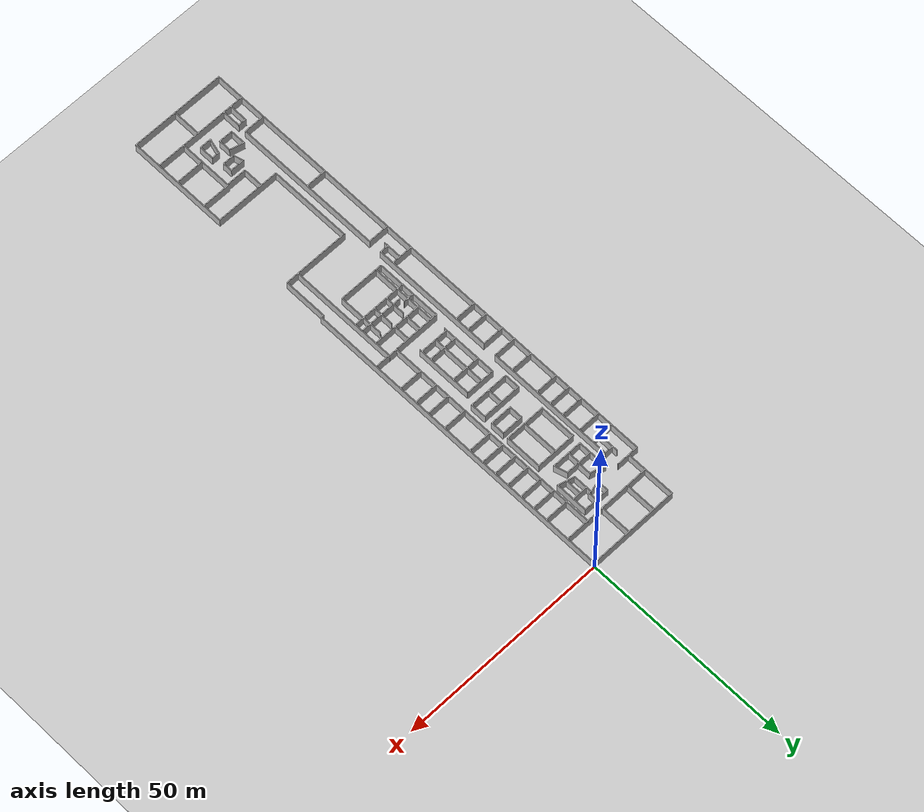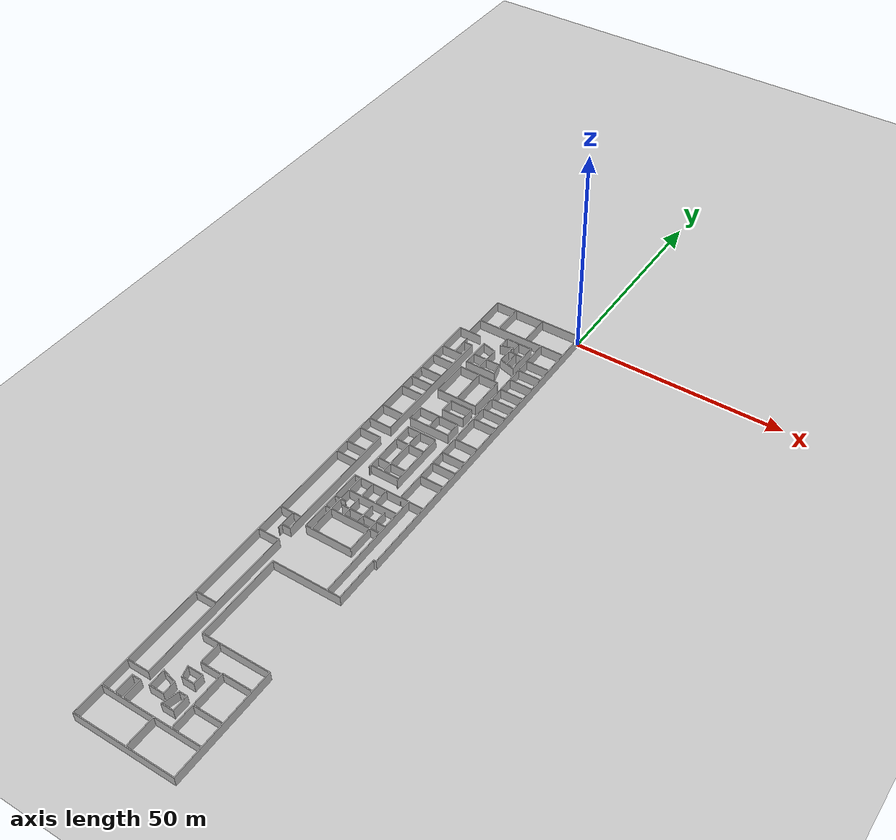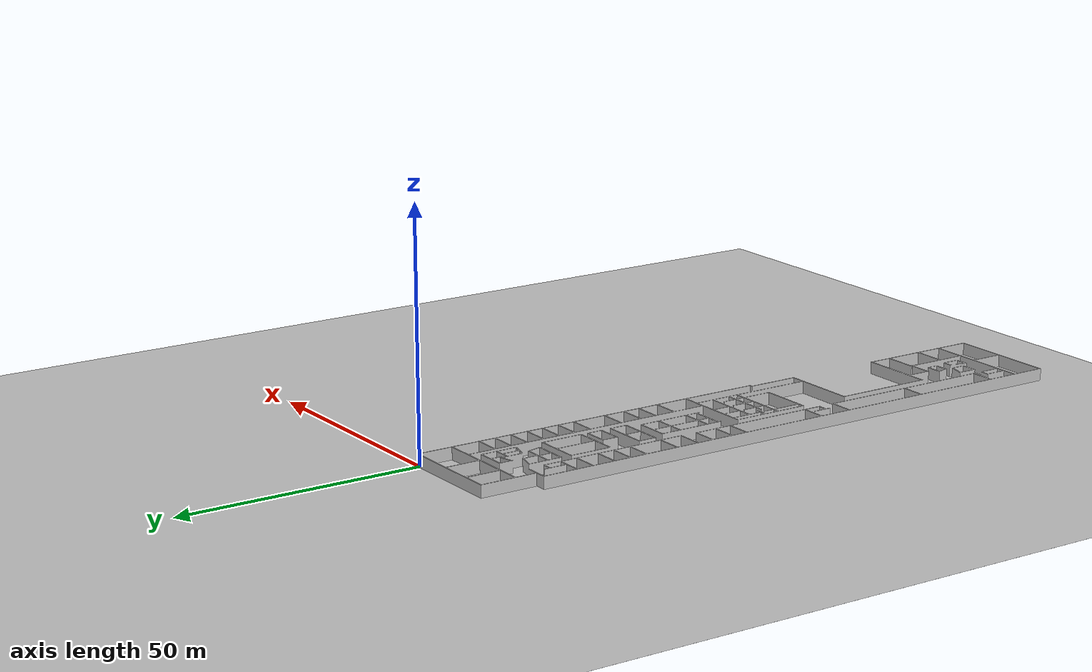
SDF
<?xml version="1.0"?>
<sdf version="1.8">
  <world name="campus_world">

    <scene>
      <ambient>0.4 0.4 0.4 1</ambient>
      <background>0.7 0.7 0.8 1</background>
      <shadows>false</shadows>
    </scene>

    <physics name="1ms" type="ode">
      <max_step_size>0.001</max_step_size>
      <real_time_factor>1.0</real_time_factor>
      <real_time_update_rate>1000</real_time_update_rate>
    </physics>

    <plugin filename="gz-sim-physics-system"
            name="gz::sim::systems::Physics"/>
    <plugin filename="gz-sim-user-commands-system"
            name="gz::sim::systems::UserCommands"/>
    <plugin filename="gz-sim-scene-broadcaster-system"
            name="gz::sim::systems::SceneBroadcaster"/>
    <plugin filename="gz-sim-sensors-system"
            name="gz::sim::systems::Sensors">
      <render_engine>ogre2</render_engine>
    </plugin>
    <plugin filename="gz-sim-imu-system"
            name="gz::sim::systems::Imu"/>

    <light name="sun" type="directional">
      <cast_shadows>false</cast_shadows>
      <pose>0 0 10 0 0 0</pose>
      <diffuse>0.8 0.8 0.8 1</diffuse>
      <specular>0.2 0.2 0.2 1</specular>
      <direction>-0.5 0.1 -0.9</direction>
    </light>

    <!-- Use this only if your exported OBJ does NOT contain a floor -->
    <model name="ground_plane">
      <static>true</static>
      <pose>0 0 -0.005 0 0 0</pose>
      <link name="link">
        <collision name="collision">
          <geometry>
            <box>
              <size>200 300 0.01</size>
            </box>
          </geometry>
        </collision>
        <visual name="visual">
          <geometry>
            <box>
              <size>200 300 0.01</size>
            </box>
          </geometry>
          <material>
            <ambient>0.8 0.8 0.8 1</ambient>
            <diffuse>0.8 0.8 0.8 1</diffuse>
          </material>
        </visual>
      </link>
    </model>

    <!-- Your SweetHome3D / Blender OBJ model -->
    <include>
      <name>campus_model</name>
      <uri>model://campus_model</uri>
      <pose>0 0 0 0 0 0</pose>
    </include>

    <gui fullscreen="0">
      <camera name="user_camera">
        <pose>0 0 80 0 1.5708 0</pose>
        <view_controller>orbit</view_controller>
        <projection_type>perspective</projection_type>
      </camera>
    </gui>

  </world>
</sdf>

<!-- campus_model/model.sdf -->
<sdf version="1.8">
  <model name="campus_model">
    <static>true</static>

    <link name="walls">
      <visual name="visual">
        <geometry>
          <mesh>
            <uri>model://campus_model/meshes/walls_without_floor.obj</uri>
            <scale>1 1 1</scale>
          </mesh>
        </geometry>
      </visual>

      <collision name="collision">
        <geometry>
          <mesh>
            <uri>model://campus_model/meshes/walls_without_floor.obj</uri>
            <scale>1 1 1</scale>
          </mesh>
        </geometry>
      </collision>
    </link>
  </model>
</sdf>
